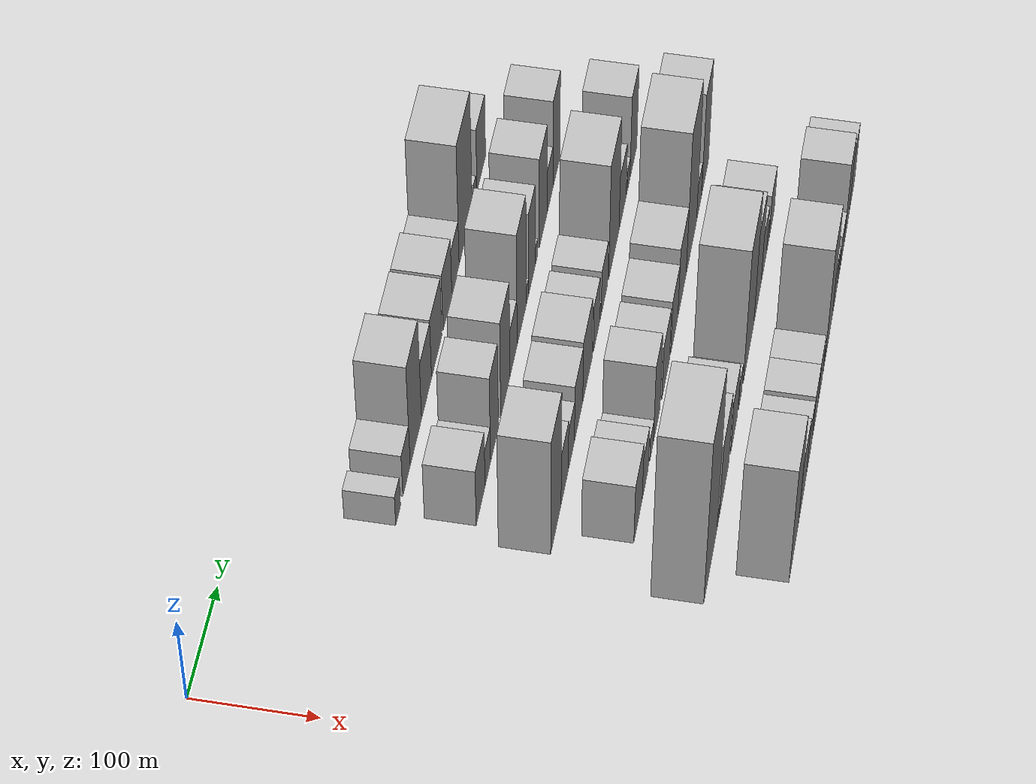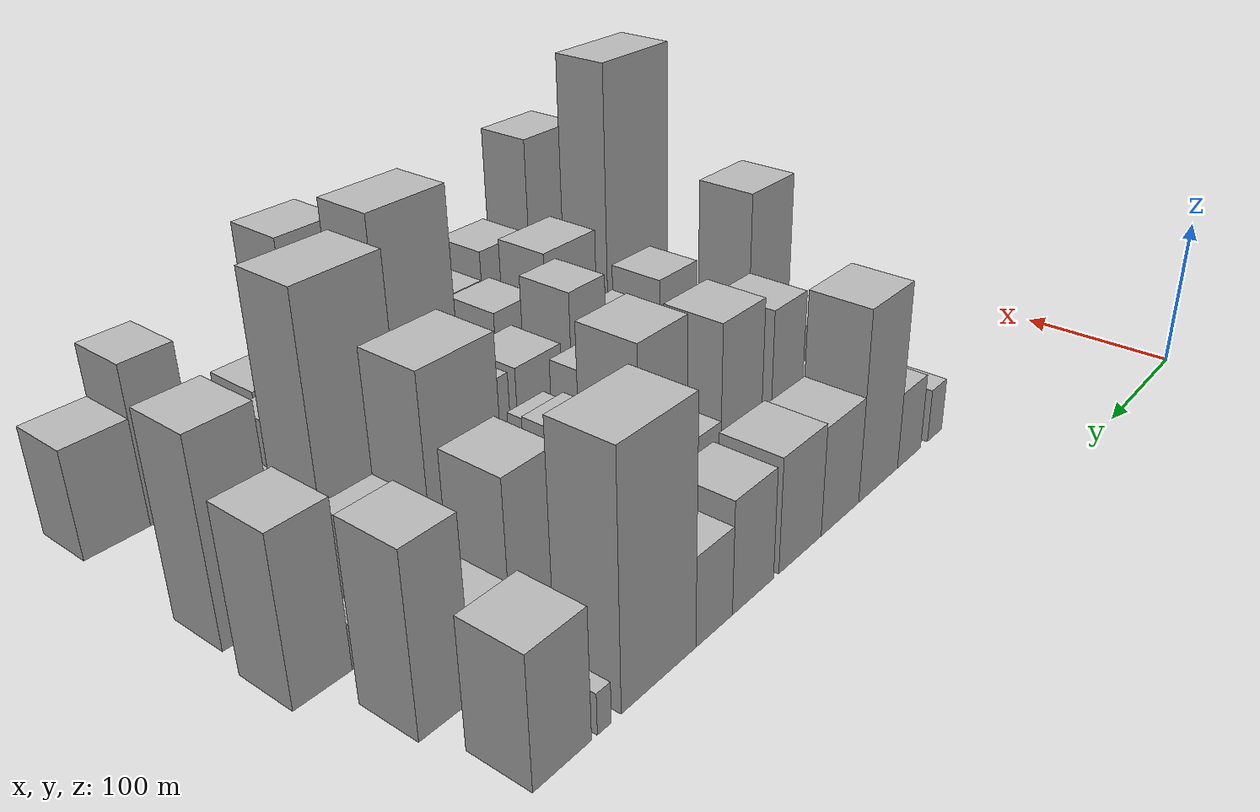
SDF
<sdf version="1.6">
 <world name="default">
  <model name="building_35">
   <static>1</static>
   <pose>100.0000 187.2246 0 0.000000 0.000000 0.000000</pose>
   <link name="link">
    <pose>0 0 18.00 0 0 0</pose>
    <collision name="collision"><geometry><box><size>40.0000 18.6371 36.0000</size></box></geometry></collision>
    <visual name="visual">
     <cast_shadows>0</cast_shadows>
     <geometry><box><size>40.0000 18.6371 36.0000</size></box></geometry>
     <material>
      <script>
       <uri>model://HANNAS_wall/materials/scripts</uri>
       <uri>model://HANNAS_wall/materials/textures</uri>
       <name>vrc/HANNAS_wall</name>
      </script>
     </material>
    </visual>
   </link>
  </model>
  <model name="building_36">
   <static>1</static>
   <pose>100.0000 220.0283 0 0.000000 0.000000 0.000000</pose>
   <link name="link">
    <pose>0 0 25.50 0 0 0</pose>
    <collision name="collision"><geometry><box><size>40.0000 28.9701 51.0000</size></box></geometry></collision>
    <visual name="visual">
     <cast_shadows>0</cast_shadows>
     <geometry><box><size>40.0000 28.9701 51.0000</size></box></geometry>
     <material>
      <script>
       <uri>model://HANNAS_wall/materials/scripts</uri>
       <uri>model://HANNAS_wall/materials/textures</uri>
       <name>vrc/HANNAS_wall</name>
      </script>
     </material>
    </visual>
   </link>
  </model>
  <model name="building_37">
   <static>1</static>
   <pose>100.0000 257.2133 0 0.000000 0.000000 0.000000</pose>
   <link name="link">
    <pose>0 0 61.50 0 0 0</pose>
    <collision name="collision"><geometry><box><size>40.0000 45.3998 123.0000</size></box></geometry></collision>
    <visual name="visual">
     <cast_shadows>0</cast_shadows>
     <geometry><box><size>40.0000 45.3998 123.0000</size></box></geometry>
     <material>
      <script>
       <uri>model://HANNAS_wall/materials/scripts</uri>
       <uri>model://HANNAS_wall/materials/textures</uri>
       <name>vrc/HANNAS_wall</name>
      </script>
     </material>
    </visual>
   </link>
  </model>
  <model name="building_38">
   <static>1</static>
   <pose>100.0000 300.1819 0 0.000000 0.000000 0.000000</pose>
   <link name="link">
    <pose>0 0 34.50 0 0 0</pose>
    <collision name="collision"><geometry><box><size>40.0000 40.5374 69.0000</size></box></geometry></collision>
    <visual name="visual">
     <cast_shadows>0</cast_shadows>
     <geometry><box><size>40.0000 40.5374 69.0000</size></box></geometry>
     <material>
      <script>
       <uri>model://HANNAS_wall/materials/scripts</uri>
       <uri>model://HANNAS_wall/materials/textures</uri>
       <name>vrc/HANNAS_wall</name>
      </script>
     </material>
    </visual>
   </link>
  </model>
  <model name="building_39">
   <static>1</static>
   <pose>100.0000 341.5283 0 0.000000 0.000000 0.000000</pose>
   <link name="link">
    <pose>0 0 36.00 0 0 0</pose>
    <collision name="collision"><geometry><box><size>40.0000 42.1555 72.0000</size></box></geometry></collision>
    <visual name="visual">
     <cast_shadows>0</cast_shadows>
     <geometry><box><size>40.0000 42.1555 72.0000</size></box></geometry>
     <material>
      <script>
       <uri>model://HANNAS_wall/materials/scripts</uri>
       <uri>model://HANNAS_wall/materials/textures</uri>
       <name>vrc/HANNAS_wall</name>
      </script>
     </material>
    </visual>
   </link>
  </model>
  <model name="building_40">
   <static>1</static>
   <pose>100.0000 386.2594 0 0.000000 0.000000 0.000000</pose>
   <link name="link">
    <pose>0 0 34.50 0 0 0</pose>
    <collision name="collision"><geometry><box><size>40.0000 37.3066 69.0000</size></box></geometry></collision>
    <visual name="visual">
     <cast_shadows>0</cast_shadows>
     <geometry><box><size>40.0000 37.3066 69.0000</size></box></geometry>
     <material>
      <script>
       <uri>model://HANNAS_wall/materials/scripts</uri>
       <uri>model://HANNAS_wall/materials/textures</uri>
       <name>vrc/HANNAS_wall</name>
      </script>
     </material>
    </visual>
   </link>
  </model>
  <model name="building_41">
   <static>1</static>
   <pose>100.0000 420.3842 0 0.000000 0.000000 0.000000</pose>
   <link name="link">
    <pose>0 0 27.00 0 0 0</pose>
    <collision name="collision"><geometry><box><size>40.0000 30.9430 54.0000</size></box></geometry></collision>
    <visual name="visual">
     <cast_shadows>0</cast_shadows>
     <geometry><box><size>40.0000 30.9430 54.0000</size></box></geometry>
     <material>
      <script>
       <uri>model://HANNAS_wall/materials/scripts</uri>
       <uri>model://HANNAS_wall/materials/textures</uri>
       <name>vrc/HANNAS_wall</name>
      </script>
     </material>
    </visual>
   </link>
  </model>
  <model name="building_42">
   <static>1</static>
   <pose>100.0000 464.3916 0 0.000000 0.000000 0.000000</pose>
   <link name="link">
    <pose>0 0 72.00 0 0 0</pose>
    <collision name="collision"><geometry><box><size>40.0000 57.0718 144.0000</size></box></geometry></collision>
    <visual name="visual">
     <cast_shadows>0</cast_shadows>
     <geometry><box><size>40.0000 57.0718 144.0000</size></box></geometry>
     <material>
      <script>
       <uri>model://HANNAS_wall/materials/scripts</uri>
       <uri>model://HANNAS_wall/materials/textures</uri>
       <name>vrc/HANNAS_wall</name>
      </script>
     </material>
    </visual>
   </link>
  </model>
  <model name="building_43">
   <static>1</static>
   <pose>100.0000 504.8027 0 0.000000 0.000000 0.000000</pose>
   <link name="link">
    <pose>0 0 12.00 0 0 0</pose>
    <collision name="collision"><geometry><box><size>40.0000 9.7504 24.0000</size></box></geometry></collision>
    <visual name="visual">
     <cast_shadows>0</cast_shadows>
     <geometry><box><size>40.0000 9.7504 24.0000</size></box></geometry>
     <material>
      <script>
       <uri>model://HANNAS_wall/materials/scripts</uri>
       <uri>model://HANNAS_wall/materials/textures</uri>
       <name>vrc/HANNAS_wall</name>
      </script>
     </material>
    </visual>
   </link>
  </model>
  <model name="building_44">
   <static>1</static>
   <pose>100.0000 532.8715 0 0.000000 0.000000 0.000000</pose>
   <link name="link">
    <pose>0 0 37.50 0 0 0</pose>
    <collision name="collision"><geometry><box><size>40.0000 38.3871 75.0000</size></box></geometry></collision>
    <visual name="visual">
     <cast_shadows>0</cast_shadows>
     <geometry><box><size>40.0000 38.3871 75.0000</size></box></geometry>
     <material>
      <script>
       <uri>model://HANNAS_wall/materials/scripts</uri>
       <uri>model://HANNAS_wall/materials/textures</uri>
       <name>vrc/HANNAS_wall</name>
      </script>
     </material>
    </visual>
   </link>
  </model>
  <model name="building_89">
   <static>1</static>
   <pose>160.0000 206.7054 0 0.000000 0.000000 0.000000</pose>
   <link name="link">
    <pose>0 0 34.50 0 0 0</pose>
    <collision name="collision"><geometry><box><size>40.0000 36.9199 69.0000</size></box></geometry></collision>
    <visual name="visual">
     <cast_shadows>0</cast_shadows>
     <geometry><box><size>40.0000 36.9199 69.0000</size></box></geometry>
     <material>
      <script>
       <uri>model://HANNAS_wall/materials/scripts</uri>
       <uri>model://HANNAS_wall/materials/textures</uri>
       <name>vrc/HANNAS_wall</name>
      </script>
     </material>
    </visual>
   </link>
  </model>
  <model name="building_90">
   <static>1</static>
   <pose>160.0000 236.8410 0 0.000000 0.000000 0.000000</pose>
   <link name="link">
    <pose>0 0 22.50 0 0 0</pose>
    <collision name="collision"><geometry><box><size>40.0000 23.3513 45.0000</size></box></geometry></collision>
    <visual name="visual">
     <cast_shadows>0</cast_shadows>
     <geometry><box><size>40.0000 23.3513 45.0000</size></box></geometry>
     <material>
      <script>
       <uri>model://HANNAS_wall/materials/scripts</uri>
       <uri>model://HANNAS_wall/materials/textures</uri>
       <name>vrc/HANNAS_wall</name>
      </script>
     </material>
    </visual>
   </link>
  </model>
  <model name="building_91">
   <static>1</static>
   <pose>160.0000 265.3119 0 0.000000 0.000000 0.000000</pose>
   <link name="link">
    <pose>0 0 52.50 0 0 0</pose>
    <collision name="collision"><geometry><box><size>40.0000 33.5907 105.0000</size></box></geometry></collision>
    <visual name="visual">
     <cast_shadows>0</cast_shadows>
     <geometry><box><size>40.0000 33.5907 105.0000</size></box></geometry>
     <material>
      <script>
       <uri>model://HANNAS_wall/materials/scripts</uri>
       <uri>model://HANNAS_wall/materials/textures</uri>
       <name>vrc/HANNAS_wall</name>
      </script>
     </material>
    </visual>
   </link>
  </model>
  <model name="building_92">
   <static>1</static>
   <pose>160.0000 312.2336 0 0.000000 0.000000 0.000000</pose>
   <link name="link">
    <pose>0 0 58.50 0 0 0</pose>
    <collision name="collision"><geometry><box><size>40.0000 40.2525 117.0000</size></box></geometry></collision>
    <visual name="visual">
     <cast_shadows>0</cast_shadows>
     <geometry><box><size>40.0000 40.2525 117.0000</size></box></geometry>
     <material>
      <script>
       <uri>model://HANNAS_wall/materials/scripts</uri>
       <uri>model://HANNAS_wall/materials/textures</uri>
       <name>vrc/HANNAS_wall</name>
      </script>
     </material>
    </visual>
   </link>
  </model>
  <model name="building_93">
   <static>1</static>
   <pose>160.0000 348.0226 0 0.000000 0.000000 0.000000</pose>
   <link name="link">
    <pose>0 0 28.50 0 0 0</pose>
    <collision name="collision"><geometry><box><size>40.0000 31.3255 57.0000</size></box></geometry></collision>
    <visual name="visual">
     <cast_shadows>0</cast_shadows>
     <geometry><box><size>40.0000 31.3255 57.0000</size></box></geometry>
     <material>
      <script>
       <uri>model://HANNAS_wall/materials/scripts</uri>
       <uri>model://HANNAS_wall/materials/textures</uri>
       <name>vrc/HANNAS_wall</name>
      </script>
     </material>
    </visual>
   </link>
  </model>
  <model name="building_94">
   <static>1</static>
   <pose>160.0000 384.1607 0 0.000000 0.000000 0.000000</pose>
   <link name="link">
    <pose>0 0 67.50 0 0 0</pose>
    <collision name="collision"><geometry><box><size>40.0000 40.9507 135.0000</size></box></geometry></collision>
    <visual name="visual">
     <cast_shadows>0</cast_shadows>
     <geometry><box><size>40.0000 40.9507 135.0000</size></box></geometry>
     <material>
      <script>
       <uri>model://HANNAS_wall/materials/scripts</uri>
       <uri>model://HANNAS_wall/materials/textures</uri>
       <name>vrc/HANNAS_wall</name>
      </script>
     </material>
    </visual>
   </link>
  </model>
  <model name="building_95">
   <static>1</static>
   <pose>160.0000 409.8823 0 0.000000 0.000000 0.000000</pose>
   <link name="link">
    <pose>0 0 10.50 0 0 0</pose>
    <collision name="collision"><geometry><box><size>40.0000 10.4926 21.0000</size></box></geometry></collision>
    <visual name="visual">
     <cast_shadows>0</cast_shadows>
     <geometry><box><size>40.0000 10.4926 21.0000</size></box></geometry>
     <material>
      <script>
       <uri>model://HANNAS_wall/materials/scripts</uri>
       <uri>model://HANNAS_wall/materials/textures</uri>
       <name>vrc/HANNAS_wall</name>
      </script>
     </material>
    </visual>
   </link>
  </model>
  <model name="building_96">
   <static>1</static>
   <pose>160.0000 430.4873 0 0.000000 0.000000 0.000000</pose>
   <link name="link">
    <pose>0 0 49.50 0 0 0</pose>
    <collision name="collision"><geometry><box><size>40.0000 30.7174 99.0000</size></box></geometry></collision>
    <visual name="visual">
     <cast_shadows>0</cast_shadows>
     <geometry><box><size>40.0000 30.7174 99.0000</size></box></geometry>
     <material>
      <script>
       <uri>model://HANNAS_wall/materials/scripts</uri>
       <uri>model://HANNAS_wall/materials/textures</uri>
       <name>vrc/HANNAS_wall</name>
      </script>
     </material>
    </visual>
   </link>
  </model>
  <model name="building_97">
   <static>1</static>
   <pose>160.0000 451.0818 0 0.000000 0.000000 0.000000</pose>
   <link name="link">
    <pose>0 0 10.50 0 0 0</pose>
    <collision name="collision"><geometry><box><size>40.0000 10.4715 21.0000</size></box></geometry></collision>
    <visual name="visual">
     <cast_shadows>0</cast_shadows>
     <geometry><box><size>40.0000 10.4715 21.0000</size></box></geometry>
     <material>
      <script>
       <uri>model://HANNAS_wall/materials/scripts</uri>
       <uri>model://HANNAS_wall/materials/textures</uri>
       <name>vrc/HANNAS_wall</name>
      </script>
     </material>
    </visual>
   </link>
  </model>
  <model name="building_98">
   <static>1</static>
   <pose>160.0000 482.6066 0 0.000000 0.000000 0.000000</pose>
   <link name="link">
    <pose>0 0 54.00 0 0 0</pose>
    <collision name="collision"><geometry><box><size>40.0000 36.5779 108.0000</size></box></geometry></collision>
    <visual name="visual">
     <cast_shadows>0</cast_shadows>
     <geometry><box><size>40.0000 36.5779 108.0000</size></box></geometry>
     <material>
      <script>
       <uri>model://HANNAS_wall/materials/scripts</uri>
       <uri>model://HANNAS_wall/materials/textures</uri>
       <name>vrc/HANNAS_wall</name>
      </script>
     </material>
    </visual>
   </link>
  </model>
  <model name="building_99">
   <static>1</static>
   <pose>160.0000 514.4396 0 0.000000 0.000000 0.000000</pose>
   <link name="link">
    <pose>0 0 25.50 0 0 0</pose>
    <collision name="collision"><geometry><box><size>40.0000 27.0882 51.0000</size></box></geometry></collision>
    <visual name="visual">
     <cast_shadows>0</cast_shadows>
     <geometry><box><size>40.0000 27.0882 51.0000</size></box></geometry>
     <material>
      <script>
       <uri>model://HANNAS_wall/materials/scripts</uri>
       <uri>model://HANNAS_wall/materials/textures</uri>
       <name>vrc/HANNAS_wall</name>
      </script>
     </material>
    </visual>
   </link>
  </model>
  <model name="building_100">
   <static>1</static>
   <pose>160.0000 544.7363 0 0.000000 0.000000 0.000000</pose>
   <link name="link">
    <pose>0 0 52.50 0 0 0</pose>
    <collision name="collision"><geometry><box><size>40.0000 33.5051 105.0000</size></box></geometry></collision>
    <visual name="visual">
     <cast_shadows>0</cast_shadows>
     <geometry><box><size>40.0000 33.5051 105.0000</size></box></geometry>
     <material>
      <script>
       <uri>model://HANNAS_wall/materials/scripts</uri>
       <uri>model://HANNAS_wall/materials/textures</uri>
       <name>vrc/HANNAS_wall</name>
      </script>
     </material>
    </visual>
   </link>
  </model>
  <model name="building_143">
   <static>1</static>
   <pose>220.0000 195.1564 0 0.000000 0.000000 0.000000</pose>
   <link name="link">
    <pose>0 0 70.50 0 0 0</pose>
    <collision name="collision"><geometry><box><size>40.0000 46.2103 141.0000</size></box></geometry></collision>
    <visual name="visual">
     <cast_shadows>0</cast_shadows>
     <geometry><box><size>40.0000 46.2103 141.0000</size></box></geometry>
     <material>
      <script>
       <uri>model://HANNAS_wall/materials/scripts</uri>
       <uri>model://HANNAS_wall/materials/textures</uri>
       <name>vrc/HANNAS_wall</name>
      </script>
     </material>
    </visual>
   </link>
  </model>
  <model name="building_144">
   <static>1</static>
   <pose>220.0000 234.6394 0 0.000000 0.000000 0.000000</pose>
   <link name="link">
    <pose>0 0 31.50 0 0 0</pose>
    <collision name="collision"><geometry><box><size>40.0000 32.7558 63.0000</size></box></geometry></collision>
    <visual name="visual">
     <cast_shadows>0</cast_shadows>
     <geometry><box><size>40.0000 32.7558 63.0000</size></box></geometry>
     <material>
      <script>
       <uri>model://HANNAS_wall/materials/scripts</uri>
       <uri>model://HANNAS_wall/materials/textures</uri>
       <name>vrc/HANNAS_wall</name>
      </script>
     </material>
    </visual>
   </link>
  </model>
  <model name="building_145">
   <static>1</static>
   <pose>220.0000 264.9543 0 0.000000 0.000000 0.000000</pose>
   <link name="link">
    <pose>0 0 25.50 0 0 0</pose>
    <collision name="collision"><geometry><box><size>40.0000 27.8740 51.0000</size></box></geometry></collision>
    <visual name="visual">
     <cast_shadows>0</cast_shadows>
     <geometry><box><size>40.0000 27.8740 51.0000</size></box></geometry>
     <material>
      <script>
       <uri>model://HANNAS_wall/materials/scripts</uri>
       <uri>model://HANNAS_wall/materials/textures</uri>
       <name>vrc/HANNAS_wall</name>
      </script>
     </material>
    </visual>
   </link>
  </model>
  <model name="building_146">
   <static>1</static>
   <pose>220.0000 298.1488 0 0.000000 0.000000 0.000000</pose>
   <link name="link">
    <pose>0 0 34.50 0 0 0</pose>
    <collision name="collision"><geometry><box><size>40.0000 38.5150 69.0000</size></box></geometry></collision>
    <visual name="visual">
     <cast_shadows>0</cast_shadows>
     <geometry><box><size>40.0000 38.5150 69.0000</size></box></geometry>
     <material>
      <script>
       <uri>model://HANNAS_wall/materials/scripts</uri>
       <uri>model://HANNAS_wall/materials/textures</uri>
       <name>vrc/HANNAS_wall</name>
      </script>
     </material>
    </visual>
   </link>
  </model>
  <model name="building_147">
   <static>1</static>
   <pose>220.0000 339.2752 0 0.000000 0.000000 0.000000</pose>
   <link name="link">
    <pose>0 0 37.50 0 0 0</pose>
    <collision name="collision"><geometry><box><size>40.0000 43.7378 75.0000</size></box></geometry></collision>
    <visual name="visual">
     <cast_shadows>0</cast_shadows>
     <geometry><box><size>40.0000 43.7378 75.0000</size></box></geometry>
     <material>
      <script>
       <uri>model://HANNAS_wall/materials/scripts</uri>
       <uri>model://HANNAS_wall/materials/textures</uri>
       <name>vrc/HANNAS_wall</name>
      </script>
     </material>
    </visual>
   </link>
  </model>
  <model name="building_148">
   <static>1</static>
   <pose>220.0000 382.0590 0 0.000000 0.000000 0.000000</pose>
   <link name="link">
    <pose>0 0 28.50 0 0 0</pose>
    <collision name="collision"><geometry><box><size>40.0000 29.8298 57.0000</size></box></geometry></collision>
    <visual name="visual">
     <cast_shadows>0</cast_shadows>
     <geometry><box><size>40.0000 29.8298 57.0000</size></box></geometry>
     <material>
      <script>
       <uri>model://HANNAS_wall/materials/scripts</uri>
       <uri>model://HANNAS_wall/materials/textures</uri>
       <name>vrc/HANNAS_wall</name>
      </script>
     </material>
    </visual>
   </link>
  </model>
  <model name="building_149">
   <static>1</static>
   <pose>220.0000 400.9778 0 0.000000 0.000000 0.000000</pose>
   <link name="link">
    <pose>0 0 9.00 0 0 0</pose>
    <collision name="collision"><geometry><box><size>40.0000 8.0078 18.0000</size></box></geometry></collision>
    <visual name="visual">
     <cast_shadows>0</cast_shadows>
     <geometry><box><size>40.0000 8.0078 18.0000</size></box></geometry>
     <material>
      <script>
       <uri>model://HANNAS_wall/materials/scripts</uri>
       <uri>model://HANNAS_wall/materials/textures</uri>
       <name>vrc/HANNAS_wall</name>
      </script>
     </material>
    </visual>
   </link>
  </model>
  <model name="building_150">
   <static>1</static>
   <pose>220.0000 420.7544 0 0.000000 0.000000 0.000000</pose>
   <link name="link">
    <pose>0 0 27.00 0 0 0</pose>
    <collision name="collision"><geometry><box><size>40.0000 31.5453 54.0000</size></box></geometry></collision>
    <visual name="visual">
     <cast_shadows>0</cast_shadows>
     <geometry><box><size>40.0000 31.5453 54.0000</size></box></geometry>
     <material>
      <script>
       <uri>model://HANNAS_wall/materials/scripts</uri>
       <uri>model://HANNAS_wall/materials/textures</uri>
       <name>vrc/HANNAS_wall</name>
      </script>
     </material>
    </visual>
   </link>
  </model>
  <model name="building_151">
   <static>1</static>
   <pose>220.0000 467.1917 0 0.000000 0.000000 0.000000</pose>
   <link name="link">
    <pose>0 0 69.00 0 0 0</pose>
    <collision name="collision"><geometry><box><size>40.0000 51.3293 138.0000</size></box></geometry></collision>
    <visual name="visual">
     <cast_shadows>0</cast_shadows>
     <geometry><box><size>40.0000 51.3293 138.0000</size></box></geometry>
     <material>
      <script>
       <uri>model://HANNAS_wall/materials/scripts</uri>
       <uri>model://HANNAS_wall/materials/textures</uri>
       <name>vrc/HANNAS_wall</name>
      </script>
     </material>
    </visual>
   </link>
  </model>
  <model name="building_152">
   <static>1</static>
   <pose>220.0000 510.5554 0 0.000000 0.000000 0.000000</pose>
   <link name="link">
    <pose>0 0 33.00 0 0 0</pose>
    <collision name="collision"><geometry><box><size>40.0000 35.3980 66.0000</size></box></geometry></collision>
    <visual name="visual">
     <cast_shadows>0</cast_shadows>
     <geometry><box><size>40.0000 35.3980 66.0000</size></box></geometry>
     <material>
      <script>
       <uri>model://HANNAS_wall/materials/scripts</uri>
       <uri>model://HANNAS_wall/materials/textures</uri>
       <name>vrc/HANNAS_wall</name>
      </script>
     </material>
    </visual>
   </link>
  </model>
  <model name="building_153">
   <static>1</static>
   <pose>220.0000 532.0405 0 0.000000 0.000000 0.000000</pose>
   <link name="link">
    <pose>0 0 9.00 0 0 0</pose>
    <collision name="collision"><geometry><box><size>40.0000 7.5722 18.0000</size></box></geometry></collision>
    <visual name="visual">
     <cast_shadows>0</cast_shadows>
     <geometry><box><size>40.0000 7.5722 18.0000</size></box></geometry>
     <material>
      <script>
       <uri>model://HANNAS_wall/materials/scripts</uri>
       <uri>model://HANNAS_wall/materials/textures</uri>
       <name>vrc/HANNAS_wall</name>
      </script>
     </material>
    </visual>
   </link>
  </model>
  <model name="building_154">
   <static>1</static>
   <pose>220.0000 542.1291 0 0.000000 0.000000 0.000000</pose>
   <link name="link">
    <pose>0 0 13.50 0 0 0</pose>
    <collision name="collision"><geometry><box><size>40.0000 12.6051 27.0000</size></box></geometry></collision>
    <visual name="visual">
     <cast_shadows>0</cast_shadows>
     <geometry><box><size>40.0000 12.6051 27.0000</size></box></geometry>
     <material>
      <script>
       <uri>model://HANNAS_wall/materials/scripts</uri>
       <uri>model://HANNAS_wall/materials/textures</uri>
       <name>vrc/HANNAS_wall</name>
      </script>
     </material>
    </visual>
   </link>
  </model>
  <model name="building_155">
   <static>1</static>
   <pose>220.0000 565.9052 0 0.000000 0.000000 0.000000</pose>
   <link name="link">
    <pose>0 0 49.50 0 0 0</pose>
    <collision name="collision"><geometry><box><size>40.0000 34.9470 99.0000</size></box></geometry></collision>
    <visual name="visual">
     <cast_shadows>0</cast_shadows>
     <geometry><box><size>40.0000 34.9470 99.0000</size></box></geometry>
     <material>
      <script>
       <uri>model://HANNAS_wall/materials/scripts</uri>
       <uri>model://HANNAS_wall/materials/textures</uri>
       <name>vrc/HANNAS_wall</name>
      </script>
     </material>
    </visual>
   </link>
  </model>
  <model name="building_203">
   <static>1</static>
   <pose>280.0000 213.2557 0 0.000000 0.000000 0.000000</pose>
   <link name="link">
    <pose>0 0 36.00 0 0 0</pose>
    <collision name="collision"><geometry><box><size>40.0000 40.4751 72.0000</size></box></geometry></collision>
    <visual name="visual">
     <cast_shadows>0</cast_shadows>
     <geometry><box><size>40.0000 40.4751 72.0000</size></box></geometry>
     <material>
      <script>
       <uri>model://HANNAS_wall/materials/scripts</uri>
       <uri>model://HANNAS_wall/materials/textures</uri>
       <name>vrc/HANNAS_wall</name>
      </script>
     </material>
    </visual>
   </link>
  </model>
  <model name="building_204">
   <static>1</static>
   <pose>280.0000 248.2502 0 0.000000 0.000000 0.000000</pose>
   <link name="link">
    <pose>0 0 27.00 0 0 0</pose>
    <collision name="collision"><geometry><box><size>40.0000 29.5138 54.0000</size></box></geometry></collision>
    <visual name="visual">
     <cast_shadows>0</cast_shadows>
     <geometry><box><size>40.0000 29.5138 54.0000</size></box></geometry>
     <material>
      <script>
       <uri>model://HANNAS_wall/materials/scripts</uri>
       <uri>model://HANNAS_wall/materials/textures</uri>
       <name>vrc/HANNAS_wall</name>
      </script>
     </material>
    </visual>
   </link>
  </model>
  <model name="building_205">
   <static>1</static>
   <pose>280.0000 279.0065 0 0.000000 0.000000 0.000000</pose>
   <link name="link">
    <pose>0 0 15.00 0 0 0</pose>
    <collision name="collision"><geometry><box><size>40.0000 17.9990 30.0000</size></box></geometry></collision>
    <visual name="visual">
     <cast_shadows>0</cast_shadows>
     <geometry><box><size>40.0000 17.9990 30.0000</size></box></geometry>
     <material>
      <script>
       <uri>model://HANNAS_wall/materials/scripts</uri>
       <uri>model://HANNAS_wall/materials/textures</uri>
       <name>vrc/HANNAS_wall</name>
      </script>
     </material>
    </visual>
   </link>
  </model>
  <model name="building_206">
   <static>1</static>
   <pose>280.0000 304.4706 0 0.000000 0.000000 0.000000</pose>
   <link name="link">
    <pose>0 0 48.00 0 0 0</pose>
    <collision name="collision"><geometry><box><size>40.0000 32.9291 96.0000</size></box></geometry></collision>
    <visual name="visual">
     <cast_shadows>0</cast_shadows>
     <geometry><box><size>40.0000 32.9291 96.0000</size></box></geometry>
     <material>
      <script>
       <uri>model://HANNAS_wall/materials/scripts</uri>
       <uri>model://HANNAS_wall/materials/textures</uri>
       <name>vrc/HANNAS_wall</name>
      </script>
     </material>
    </visual>
   </link>
  </model>
  <model name="building_207">
   <static>1</static>
   <pose>280.0000 349.5330 0 0.000000 0.000000 0.000000</pose>
   <link name="link">
    <pose>0 0 33.00 0 0 0</pose>
    <collision name="collision"><geometry><box><size>40.0000 39.1957 66.0000</size></box></geometry></collision>
    <visual name="visual">
     <cast_shadows>0</cast_shadows>
     <geometry><box><size>40.0000 39.1957 66.0000</size></box></geometry>
     <material>
      <script>
       <uri>model://HANNAS_wall/materials/scripts</uri>
       <uri>model://HANNAS_wall/materials/textures</uri>
       <name>vrc/HANNAS_wall</name>
      </script>
     </material>
    </visual>
   </link>
  </model>
  <model name="building_208">
   <static>1</static>
   <pose>280.0000 394.0871 0 0.000000 0.000000 0.000000</pose>
   <link name="link">
    <pose>0 0 33.00 0 0 0</pose>
    <collision name="collision"><geometry><box><size>40.0000 37.9124 66.0000</size></box></geometry></collision>
    <visual name="visual">
     <cast_shadows>0</cast_shadows>
     <geometry><box><size>40.0000 37.9124 66.0000</size></box></geometry>
     <material>
      <script>
       <uri>model://HANNAS_wall/materials/scripts</uri>
       <uri>model://HANNAS_wall/materials/textures</uri>
       <name>vrc/HANNAS_wall</name>
      </script>
     </material>
    </visual>
   </link>
  </model>
  <model name="building_209">
   <static>1</static>
   <pose>280.0000 434.7887 0 0.000000 0.000000 0.000000</pose>
   <link name="link">
    <pose>0 0 42.00 0 0 0</pose>
    <collision name="collision"><geometry><box><size>40.0000 43.4909 84.0000</size></box></geometry></collision>
    <visual name="visual">
     <cast_shadows>0</cast_shadows>
     <geometry><box><size>40.0000 43.4909 84.0000</size></box></geometry>
     <material>
      <script>
       <uri>model://HANNAS_wall/materials/scripts</uri>
       <uri>model://HANNAS_wall/materials/textures</uri>
       <name>vrc/HANNAS_wall</name>
      </script>
     </material>
    </visual>
   </link>
  </model>
  <model name="building_210">
   <static>1</static>
   <pose>280.0000 484.5712 0 0.000000 0.000000 0.000000</pose>
   <link name="link">
    <pose>0 0 85.50 0 0 0</pose>
    <collision name="collision"><geometry><box><size>40.0000 56.0742 171.0000</size></box></geometry></collision>
    <visual name="visual">
     <cast_shadows>0</cast_shadows>
     <geometry><box><size>40.0000 56.0742 171.0000</size></box></geometry>
     <material>
      <script>
       <uri>model://HANNAS_wall/materials/scripts</uri>
       <uri>model://HANNAS_wall/materials/textures</uri>
       <name>vrc/HANNAS_wall</name>
      </script>
     </material>
    </visual>
   </link>
  </model>
  <model name="building_211">
   <static>1</static>
   <pose>280.0000 524.9275 0 0.000000 0.000000 0.000000</pose>
   <link name="link">
    <pose>0 0 22.50 0 0 0</pose>
    <collision name="collision"><geometry><box><size>40.0000 24.6384 45.0000</size></box></geometry></collision>
    <visual name="visual">
     <cast_shadows>0</cast_shadows>
     <geometry><box><size>40.0000 24.6384 45.0000</size></box></geometry>
     <material>
      <script>
       <uri>model://HANNAS_wall/materials/scripts</uri>
       <uri>model://HANNAS_wall/materials/textures</uri>
       <name>vrc/HANNAS_wall</name>
      </script>
     </material>
    </visual>
   </link>
  </model>
  <model name="building_212">
   <static>1</static>
   <pose>280.0000 559.2961 0 0.000000 0.000000 0.000000</pose>
   <link name="link">
    <pose>0 0 61.50 0 0 0</pose>
    <collision name="collision"><geometry><box><size>40.0000 38.0987 123.0000</size></box></geometry></collision>
    <visual name="visual">
     <cast_shadows>0</cast_shadows>
     <geometry><box><size>40.0000 38.0987 123.0000</size></box></geometry>
     <material>
      <script>
       <uri>model://HANNAS_wall/materials/scripts</uri>
       <uri>model://HANNAS_wall/materials/textures</uri>
       <name>vrc/HANNAS_wall</name>
      </script>
     </material>
    </visual>
   </link>
  </model>
  <model name="building_257">
   <static>1</static>
   <pose>340.0000 181.4137 0 0.000000 0.000000 0.000000</pose>
   <link name="link">
    <pose>0 0 100.50 0 0 0</pose>
    <collision name="collision"><geometry><box><size>40.0000 67.8926 201.0000</size></box></geometry></collision>
    <visual name="visual">
     <cast_shadows>0</cast_shadows>
     <geometry><box><size>40.0000 67.8926 201.0000</size></box></geometry>
     <material>
      <script>
       <uri>model://HANNAS_wall/materials/scripts</uri>
       <uri>model://HANNAS_wall/materials/textures</uri>
       <name>vrc/HANNAS_wall</name>
      </script>
     </material>
    </visual>
   </link>
  </model>
  <model name="building_258">
   <static>1</static>
   <pose>340.0000 219.7786 0 0.000000 0.000000 0.000000</pose>
   <link name="link">
    <pose>0 0 10.50 0 0 0</pose>
    <collision name="collision"><geometry><box><size>40.0000 8.8373 21.0000</size></box></geometry></collision>
    <visual name="visual">
     <cast_shadows>0</cast_shadows>
     <geometry><box><size>40.0000 8.8373 21.0000</size></box></geometry>
     <material>
      <script>
       <uri>model://HANNAS_wall/materials/scripts</uri>
       <uri>model://HANNAS_wall/materials/textures</uri>
       <name>vrc/HANNAS_wall</name>
      </script>
     </material>
    </visual>
   </link>
  </model>
  <model name="building_259">
   <static>1</static>
   <pose>340.0000 252.5606 0 0.000000 0.000000 0.000000</pose>
   <link name="link">
    <pose>0 0 45.00 0 0 0</pose>
    <collision name="collision"><geometry><box><size>40.0000 50.7267 90.0000</size></box></geometry></collision>
    <visual name="visual">
     <cast_shadows>0</cast_shadows>
     <geometry><box><size>40.0000 50.7267 90.0000</size></box></geometry>
     <material>
      <script>
       <uri>model://HANNAS_wall/materials/scripts</uri>
       <uri>model://HANNAS_wall/materials/textures</uri>
       <name>vrc/HANNAS_wall</name>
      </script>
     </material>
    </visual>
   </link>
  </model>
  <model name="building_260">
   <static>1</static>
   <pose>340.0000 306.5453 0 0.000000 0.000000 0.000000</pose>
   <link name="link">
    <pose>0 0 33.00 0 0 0</pose>
    <collision name="collision"><geometry><box><size>40.0000 37.2428 66.0000</size></box></geometry></collision>
    <visual name="visual">
     <cast_shadows>0</cast_shadows>
     <geometry><box><size>40.0000 37.2428 66.0000</size></box></geometry>
     <material>
      <script>
       <uri>model://HANNAS_wall/materials/scripts</uri>
       <uri>model://HANNAS_wall/materials/textures</uri>
       <name>vrc/HANNAS_wall</name>
      </script>
     </material>
    </visual>
   </link>
  </model>
  <model name="building_261">
   <static>1</static>
   <pose>340.0000 339.6156 0 0.000000 0.000000 0.000000</pose>
   <link name="link">
    <pose>0 0 18.00 0 0 0</pose>
    <collision name="collision"><geometry><box><size>40.0000 18.8978 36.0000</size></box></geometry></collision>
    <visual name="visual">
     <cast_shadows>0</cast_shadows>
     <geometry><box><size>40.0000 18.8978 36.0000</size></box></geometry>
     <material>
      <script>
       <uri>model://HANNAS_wall/materials/scripts</uri>
       <uri>model://HANNAS_wall/materials/textures</uri>
       <name>vrc/HANNAS_wall</name>
      </script>
     </material>
    </visual>
   </link>
  </model>
  <model name="building_262">
   <static>1</static>
   <pose>340.0000 386.6657 0 0.000000 0.000000 0.000000</pose>
   <link name="link">
    <pose>0 0 81.00 0 0 0</pose>
    <collision name="collision"><geometry><box><size>40.0000 59.2025 162.0000</size></box></geometry></collision>
    <visual name="visual">
     <cast_shadows>0</cast_shadows>
     <geometry><box><size>40.0000 59.2025 162.0000</size></box></geometry>
     <material>
      <script>
       <uri>model://HANNAS_wall/materials/scripts</uri>
       <uri>model://HANNAS_wall/materials/textures</uri>
       <name>vrc/HANNAS_wall</name>
      </script>
     </material>
    </visual>
   </link>
  </model>
  <model name="building_263">
   <static>1</static>
   <pose>340.0000 436.9140 0 0.000000 0.000000 0.000000</pose>
   <link name="link">
    <pose>0 0 57.00 0 0 0</pose>
    <collision name="collision"><geometry><box><size>40.0000 41.2940 114.0000</size></box></geometry></collision>
    <visual name="visual">
     <cast_shadows>0</cast_shadows>
     <geometry><box><size>40.0000 41.2940 114.0000</size></box></geometry>
     <material>
      <script>
       <uri>model://HANNAS_wall/materials/scripts</uri>
       <uri>model://HANNAS_wall/materials/textures</uri>
       <name>vrc/HANNAS_wall</name>
      </script>
     </material>
    </visual>
   </link>
  </model>
  <model name="building_264">
   <static>1</static>
   <pose>340.0000 473.3008 0 0.000000 0.000000 0.000000</pose>
   <link name="link">
    <pose>0 0 30.00 0 0 0</pose>
    <collision name="collision"><geometry><box><size>40.0000 31.4795 60.0000</size></box></geometry></collision>
    <visual name="visual">
     <cast_shadows>0</cast_shadows>
     <geometry><box><size>40.0000 31.4795 60.0000</size></box></geometry>
     <material>
      <script>
       <uri>model://HANNAS_wall/materials/scripts</uri>
       <uri>model://HANNAS_wall/materials/textures</uri>
       <name>vrc/HANNAS_wall</name>
      </script>
     </material>
    </visual>
   </link>
  </model>
  <model name="building_265">
   <static>1</static>
   <pose>340.0000 496.6314 0 0.000000 0.000000 0.000000</pose>
   <link name="link">
    <pose>0 0 15.00 0 0 0</pose>
    <collision name="collision"><geometry><box><size>40.0000 15.1817 30.0000</size></box></geometry></collision>
    <visual name="visual">
     <cast_shadows>0</cast_shadows>
     <geometry><box><size>40.0000 15.1817 30.0000</size></box></geometry>
     <material>
      <script>
       <uri>model://HANNAS_wall/materials/scripts</uri>
       <uri>model://HANNAS_wall/materials/textures</uri>
       <name>vrc/HANNAS_wall</name>
      </script>
     </material>
    </visual>
   </link>
  </model>
  <model name="building_266">
   <static>1</static>
   <pose>340.0000 520.2109 0 0.000000 0.000000 0.000000</pose>
   <link name="link">
    <pose>0 0 27.00 0 0 0</pose>
    <collision name="collision"><geometry><box><size>40.0000 31.9773 54.0000</size></box></geometry></collision>
    <visual name="visual">
     <cast_shadows>0</cast_shadows>
     <geometry><box><size>40.0000 31.9773 54.0000</size></box></geometry>
     <material>
      <script>
       <uri>model://HANNAS_wall/materials/scripts</uri>
       <uri>model://HANNAS_wall/materials/textures</uri>
       <name>vrc/HANNAS_wall</name>
      </script>
     </material>
    </visual>
   </link>
  </model>
  <model name="building_313">
   <static>1</static>
   <pose>400.0000 203.2022 0 0.000000 0.000000 0.000000</pose>
   <link name="link">
    <pose>0 0 70.50 0 0 0</pose>
    <collision name="collision"><geometry><box><size>40.0000 50.9533 141.0000</size></box></geometry></collision>
    <visual name="visual">
     <cast_shadows>0</cast_shadows>
     <geometry><box><size>40.0000 50.9533 141.0000</size></box></geometry>
     <material>
      <script>
       <uri>model://HANNAS_wall/materials/scripts</uri>
       <uri>model://HANNAS_wall/materials/textures</uri>
       <name>vrc/HANNAS_wall</name>
      </script>
     </material>
    </visual>
   </link>
  </model>
  <model name="building_314">
   <static>1</static>
   <pose>400.0000 254.6489 0 0.000000 0.000000 0.000000</pose>
   <link name="link">
    <pose>0 0 37.50 0 0 0</pose>
    <collision name="collision"><geometry><box><size>40.0000 43.9401 75.0000</size></box></geometry></collision>
    <visual name="visual">
     <cast_shadows>0</cast_shadows>
     <geometry><box><size>40.0000 43.9401 75.0000</size></box></geometry>
     <material>
      <script>
       <uri>model://HANNAS_wall/materials/scripts</uri>
       <uri>model://HANNAS_wall/materials/textures</uri>
       <name>vrc/HANNAS_wall</name>
      </script>
     </material>
    </visual>
   </link>
  </model>
  <model name="building_315">
   <static>1</static>
   <pose>400.0000 292.6887 0 0.000000 0.000000 0.000000</pose>
   <link name="link">
    <pose>0 0 27.00 0 0 0</pose>
    <collision name="collision"><geometry><box><size>40.0000 32.1395 54.0000</size></box></geometry></collision>
    <visual name="visual">
     <cast_shadows>0</cast_shadows>
     <geometry><box><size>40.0000 32.1395 54.0000</size></box></geometry>
     <material>
      <script>
       <uri>model://HANNAS_wall/materials/scripts</uri>
       <uri>model://HANNAS_wall/materials/textures</uri>
       <name>vrc/HANNAS_wall</name>
      </script>
     </material>
    </visual>
   </link>
  </model>
  <model name="building_316">
   <static>1</static>
   <pose>400.0000 328.7437 0 0.000000 0.000000 0.000000</pose>
   <link name="link">
    <pose>0 0 27.00 0 0 0</pose>
    <collision name="collision"><geometry><box><size>40.0000 31.9705 54.0000</size></box></geometry></collision>
    <visual name="visual">
     <cast_shadows>0</cast_shadows>
     <geometry><box><size>40.0000 31.9705 54.0000</size></box></geometry>
     <material>
      <script>
       <uri>model://HANNAS_wall/materials/scripts</uri>
       <uri>model://HANNAS_wall/materials/textures</uri>
       <name>vrc/HANNAS_wall</name>
      </script>
     </material>
    </visual>
   </link>
  </model>
  <model name="building_317">
   <static>1</static>
   <pose>400.0000 358.9829 0 0.000000 0.000000 0.000000</pose>
   <link name="link">
    <pose>0 0 27.00 0 0 0</pose>
    <collision name="collision"><geometry><box><size>40.0000 28.5079 54.0000</size></box></geometry></collision>
    <visual name="visual">
     <cast_shadows>0</cast_shadows>
     <geometry><box><size>40.0000 28.5079 54.0000</size></box></geometry>
     <material>
      <script>
       <uri>model://HANNAS_wall/materials/scripts</uri>
       <uri>model://HANNAS_wall/materials/textures</uri>
       <name>vrc/HANNAS_wall</name>
      </script>
     </material>
    </visual>
   </link>
  </model>
  <model name="building_318">
   <static>1</static>
   <pose>400.0000 382.7478 0 0.000000 0.000000 0.000000</pose>
   <link name="link">
    <pose>0 0 13.50 0 0 0</pose>
    <collision name="collision"><geometry><box><size>40.0000 11.0219 27.0000</size></box></geometry></collision>
    <visual name="visual">
     <cast_shadows>0</cast_shadows>
     <geometry><box><size>40.0000 11.0219 27.0000</size></box></geometry>
     <material>
      <script>
       <uri>model://HANNAS_wall/materials/scripts</uri>
       <uri>model://HANNAS_wall/materials/textures</uri>
       <name>vrc/HANNAS_wall</name>
      </script>
     </material>
    </visual>
   </link>
  </model>
  <model name="building_319">
   <static>1</static>
   <pose>400.0000 411.1861 0 0.000000 0.000000 0.000000</pose>
   <link name="link">
    <pose>0 0 69.00 0 0 0</pose>
    <collision name="collision"><geometry><box><size>40.0000 45.8546 138.0000</size></box></geometry></collision>
    <visual name="visual">
     <cast_shadows>0</cast_shadows>
     <geometry><box><size>40.0000 45.8546 138.0000</size></box></geometry>
     <material>
      <script>
       <uri>model://HANNAS_wall/materials/scripts</uri>
       <uri>model://HANNAS_wall/materials/textures</uri>
       <name>vrc/HANNAS_wall</name>
      </script>
     </material>
    </visual>
   </link>
  </model>
  <model name="building_320">
   <static>1</static>
   <pose>400.0000 448.8803 0 0.000000 0.000000 0.000000</pose>
   <link name="link">
    <pose>0 0 25.50 0 0 0</pose>
    <collision name="collision"><geometry><box><size>40.0000 29.5339 51.0000</size></box></geometry></collision>
    <visual name="visual">
     <cast_shadows>0</cast_shadows>
     <geometry><box><size>40.0000 29.5339 51.0000</size></box></geometry>
     <material>
      <script>
       <uri>model://HANNAS_wall/materials/scripts</uri>
       <uri>model://HANNAS_wall/materials/textures</uri>
       <name>vrc/HANNAS_wall</name>
      </script>
     </material>
    </visual>
   </link>
  </model>
  <model name="building_321">
   <static>1</static>
   <pose>400.0000 471.9364 0 0.000000 0.000000 0.000000</pose>
   <link name="link">
    <pose>0 0 16.50 0 0 0</pose>
    <collision name="collision"><geometry><box><size>40.0000 16.5782 33.0000</size></box></geometry></collision>
    <visual name="visual">
     <cast_shadows>0</cast_shadows>
     <geometry><box><size>40.0000 16.5782 33.0000</size></box></geometry>
     <material>
      <script>
       <uri>model://HANNAS_wall/materials/scripts</uri>
       <uri>model://HANNAS_wall/materials/textures</uri>
       <name>vrc/HANNAS_wall</name>
      </script>
     </material>
    </visual>
   </link>
  </model>
  <model name="building_322">
   <static>1</static>
   <pose>400.0000 493.1234 0 0.000000 0.000000 0.000000</pose>
   <link name="link">
    <pose>0 0 22.50 0 0 0</pose>
    <collision name="collision"><geometry><box><size>40.0000 25.7958 45.0000</size></box></geometry></collision>
    <visual name="visual">
     <cast_shadows>0</cast_shadows>
     <geometry><box><size>40.0000 25.7958 45.0000</size></box></geometry>
     <material>
      <script>
       <uri>model://HANNAS_wall/materials/scripts</uri>
       <uri>model://HANNAS_wall/materials/textures</uri>
       <name>vrc/HANNAS_wall</name>
      </script>
     </material>
    </visual>
   </link>
  </model>
  <model name="building_323">
   <static>1</static>
   <pose>400.0000 522.8091 0 0.000000 0.000000 0.000000</pose>
   <link name="link">
    <pose>0 0 51.00 0 0 0</pose>
    <collision name="collision"><geometry><box><size>40.0000 33.5757 102.0000</size></box></geometry></collision>
    <visual name="visual">
     <cast_shadows>0</cast_shadows>
     <geometry><box><size>40.0000 33.5757 102.0000</size></box></geometry>
     <material>
      <script>
       <uri>model://HANNAS_wall/materials/scripts</uri>
       <uri>model://HANNAS_wall/materials/textures</uri>
       <name>vrc/HANNAS_wall</name>
      </script>
     </material>
    </visual>
   </link>
  </model>
  <model name="building_324">
   <static>1</static>
   <pose>400.0000 559.6740 0 0.000000 0.000000 0.000000</pose>
   <link name="link">
    <pose>0 0 34.50 0 0 0</pose>
    <collision name="collision"><geometry><box><size>40.0000 40.1541 69.0000</size></box></geometry></collision>
    <visual name="visual">
     <cast_shadows>0</cast_shadows>
     <geometry><box><size>40.0000 40.1541 69.0000</size></box></geometry>
     <material>
      <script>
       <uri>model://HANNAS_wall/materials/scripts</uri>
       <uri>model://HANNAS_wall/materials/textures</uri>
       <name>vrc/HANNAS_wall</name>
      </script>
     </material>
    </visual>
   </link>
  </model>
 </world>
</sdf>
